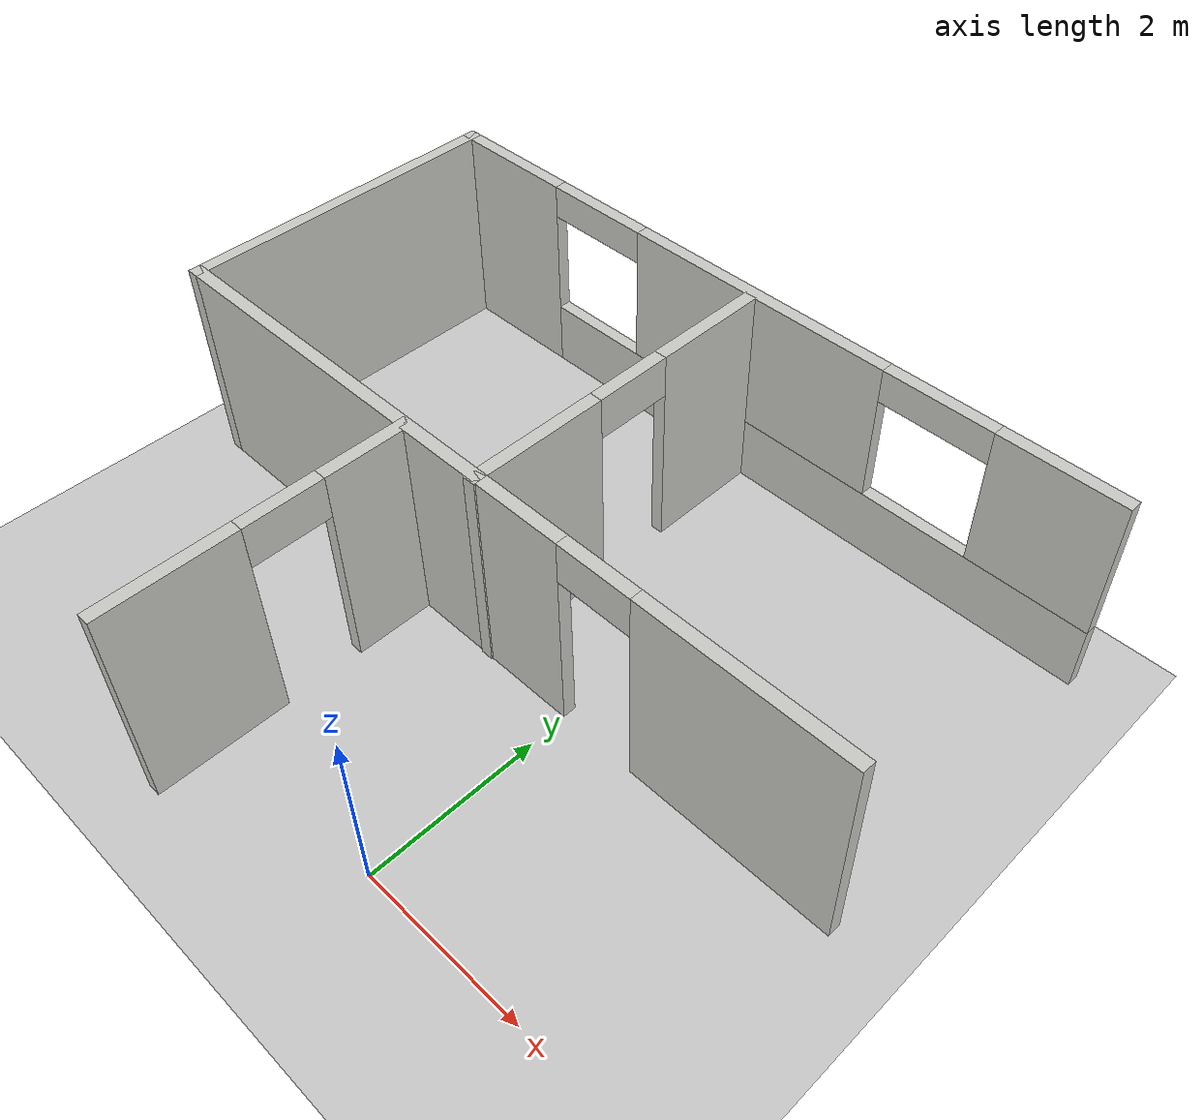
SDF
<sdf version="1.6">
 <world name="default">
  <model name="ground_plane">
   <static>1</static>
   <link name="link">
    <collision name="collision">
     <geometry><plane><normal>0 0 1</normal><size>100 100</size></plane></geometry>
     <surface>
      <contact><collide_bitmask>65535</collide_bitmask></contact>
      <friction><ode><mu>100</mu><mu2>50</mu2></ode></friction>
     </surface>
    </collision>
    <visual name="visual">
     <cast_shadows>0</cast_shadows>
     <geometry><plane><normal>0 0 1</normal><size>100 100</size></plane></geometry>
     <material>
      <script><uri>file://media/materials/scripts/gazebo.material</uri><name>Gazebo/Grey</name></script>
     </material>
    </visual>
   </link>
  </model>
  <model name="house">
   <link name="Wall_13">
    <pose>-2.28096 0.843058 0 0 -0 1.5708</pose>
    <visual name="Wall_13_Visual_2">
     <pose>0.228595 0 2.25 0 -0 0</pose>
     <geometry><box><size>0.9 0.15 0.5</size></box></geometry>
     <material>
      <script><uri>file://media/materials/scripts/gazebo.material</uri><name>Gazebo/CeilingTiled</name></script>
      <ambient>1 1 1 1</ambient>
      <shader type="pixel"/>
     </material>
     <meta><layer>0</layer></meta>
    </visual>
    <visual name="Wall_13_Visual_1">
     <pose>1.2018 0 1.25 0 -0 0</pose>
     <geometry><box><size>1.04641 0.15 2.5</size></box></geometry>
     <material>
      <script><uri>file://media/materials/scripts/gazebo.material</uri><name>Gazebo/CeilingTiled</name></script>
      <ambient>1 1 1 1</ambient>
      <shader type="pixel"/>
     </material>
     <meta><layer>0</layer></meta>
    </visual>
    <visual name="Wall_13_Visual_0">
     <pose>-0.973203 0 1.25 0 -0 0</pose>
     <geometry><box><size>1.5036 0.15 2.5</size></box></geometry>
     <material>
      <script><uri>file://media/materials/scripts/gazebo.material</uri><name>Gazebo/CeilingTiled</name></script>
      <ambient>1 1 1 1</ambient>
      <shader type="pixel"/>
     </material>
     <meta><layer>0</layer></meta>
    </visual>
    <collision name="Wall_13_Collision_1">
     <pose>1.2018 0 1.25 0 -0 0</pose>
     <geometry><box><size>1.04641 0.15 2.5</size></box></geometry>
     <surface>
      <friction>
       <ode><mu>1</mu><mu2>1</mu2><fdir1>0 0 0</fdir1><slip1>0</slip1><slip2>0</slip2></ode>
       <torsional>
        <coefficient>1</coefficient>
        <patch_radius>0</patch_radius>
        <surface_radius>0</surface_radius>
        <use_patch_radius>1</use_patch_radius>
        <ode><slip>0</slip></ode>
       </torsional>
      </friction>
      <bounce><restitution_coefficient>0</restitution_coefficient><threshold>1e+06</threshold></bounce>
      <contact>
       <collide_without_contact>0</collide_without_contact>
       <collide_without_contact_bitmask>1</collide_without_contact_bitmask>
       <collide_bitmask>1</collide_bitmask>
       <ode>
        <soft_cfm>0</soft_cfm>
        <soft_erp>0.2</soft_erp>
        <kp>1e+13</kp>
        <kd>1</kd>
        <max_vel>0.01</max_vel>
        <min_depth>0</min_depth>
       </ode>
       <bullet>
        <split_impulse>1</split_impulse>
        <split_impulse_penetration_threshold>-0.01</split_impulse_penetration_threshold>
        <soft_cfm>0</soft_cfm>
        <soft_erp>0.2</soft_erp>
        <kp>1e+13</kp>
        <kd>1</kd>
       </bullet>
      </contact>
     </surface>
    </collision>
    <collision name="Wall_13_Collision_2">
     <pose>0.228595 0 2.25 0 -0 0</pose>
     <geometry><box><size>0.9 0.15 0.5</size></box></geometry>
     <surface>
      <friction>
       <ode><mu>1</mu><mu2>1</mu2><fdir1>0 0 0</fdir1><slip1>0</slip1><slip2>0</slip2></ode>
       <torsional>
        <coefficient>1</coefficient>
        <patch_radius>0</patch_radius>
        <surface_radius>0</surface_radius>
        <use_patch_radius>1</use_patch_radius>
        <ode><slip>0</slip></ode>
       </torsional>
      </friction>
      <bounce><restitution_coefficient>0</restitution_coefficient><threshold>1e+06</threshold></bounce>
      <contact>
       <collide_without_contact>0</collide_without_contact>
       <collide_without_contact_bitmask>1</collide_without_contact_bitmask>
       <collide_bitmask>1</collide_bitmask>
       <ode>
        <soft_cfm>0</soft_cfm>
        <soft_erp>0.2</soft_erp>
        <kp>1e+13</kp>
        <kd>1</kd>
        <max_vel>0.01</max_vel>
        <min_depth>0</min_depth>
       </ode>
       <bullet>
        <split_impulse>1</split_impulse>
        <split_impulse_penetration_threshold>-0.01</split_impulse_penetration_threshold>
        <soft_cfm>0</soft_cfm>
        <soft_erp>0.2</soft_erp>
        <kp>1e+13</kp>
        <kd>1</kd>
       </bullet>
      </contact>
     </surface>
    </collision>
    <collision name="Wall_13_Collision_0">
     <pose>-0.973203 0 1.25 0 -0 0</pose>
     <geometry><box><size>1.5036 0.15 2.5</size></box></geometry>
     <surface>
      <friction>
       <ode><mu>1</mu><mu2>1</mu2><fdir1>0 0 0</fdir1><slip1>0</slip1><slip2>0</slip2></ode>
       <torsional>
        <coefficient>1</coefficient>
        <patch_radius>0</patch_radius>
        <surface_radius>0</surface_radius>
        <use_patch_radius>1</use_patch_radius>
        <ode><slip>0</slip></ode>
       </torsional>
      </friction>
      <bounce><restitution_coefficient>0</restitution_coefficient><threshold>1e+06</threshold></bounce>
      <contact>
       <collide_without_contact>0</collide_without_contact>
       <collide_without_contact_bitmask>1</collide_without_contact_bitmask>
       <collide_bitmask>1</collide_bitmask>
       <ode>
        <soft_cfm>0</soft_cfm>
        <soft_erp>0.2</soft_erp>
        <kp>1e+13</kp>
        <kd>1</kd>
        <max_vel>0.01</max_vel>
        <min_depth>0</min_depth>
       </ode>
       <bullet>
        <split_impulse>1</split_impulse>
        <split_impulse_penetration_threshold>-0.01</split_impulse_penetration_threshold>
        <soft_cfm>0</soft_cfm>
        <soft_erp>0.2</soft_erp>
        <kp>1e+13</kp>
        <kd>1</kd>
       </bullet>
      </contact>
     </surface>
    </collision>
   </link>
   <link name="Wall_15">
    <pose>-5.72496 4.42806 0 0 -0 1.5708</pose>
    <visual name="Wall_15_Visual">
     <pose>0 0 1.25 0 -0 0</pose>
     <geometry><box><size>4 0.15 2.5</size></box></geometry>
     <material>
      <script><uri>file://media/materials/scripts/gazebo.material</uri><name>Gazebo/CeilingTiled</name></script>
      <ambient>1 1 1 1</ambient>
      <shader type="pixel"/>
     </material>
     <meta><layer>0</layer></meta>
    </visual>
    <collision name="Wall_15_Collision">
     <pose>0 0 1.25 0 -0 0</pose>
     <geometry><box><size>4 0.15 2.5</size></box></geometry>
     <surface>
      <friction>
       <ode><mu>1</mu><mu2>1</mu2><fdir1>0 0 0</fdir1><slip1>0</slip1><slip2>0</slip2></ode>
       <torsional>
        <coefficient>1</coefficient>
        <patch_radius>0</patch_radius>
        <surface_radius>0</surface_radius>
        <use_patch_radius>1</use_patch_radius>
        <ode><slip>0</slip></ode>
       </torsional>
      </friction>
      <bounce><restitution_coefficient>0</restitution_coefficient><threshold>1e+06</threshold></bounce>
      <contact>
       <collide_without_contact>0</collide_without_contact>
       <collide_without_contact_bitmask>1</collide_without_contact_bitmask>
       <collide_bitmask>1</collide_bitmask>
       <ode>
        <soft_cfm>0</soft_cfm>
        <soft_erp>0.2</soft_erp>
        <kp>1e+13</kp>
        <kd>1</kd>
        <max_vel>0.01</max_vel>
        <min_depth>0</min_depth>
       </ode>
       <bullet>
        <split_impulse>1</split_impulse>
        <split_impulse_penetration_threshold>-0.01</split_impulse_penetration_threshold>
        <soft_cfm>0</soft_cfm>
        <soft_erp>0.2</soft_erp>
        <kp>1e+13</kp>
        <kd>1</kd>
       </bullet>
      </contact>
     </surface>
    </collision>
   </link>
   <link name="Wall_16">
    <pose>-1.29996 6.35306 0 0 -0 0</pose>
    <visual name="Wall_16_Visual_5">
     <pose>2.41041 0 2.3 0 -0 0</pose>
     <geometry><box><size>1.3 0.15 0.4</size></box></geometry>
     <material>
      <script><uri>file://media/materials/scripts/gazebo.material</uri><name>Gazebo/CeilingTiled</name></script>
      <ambient>1 1 1 1</ambient>
      <shader type="pixel"/>
     </material>
     <meta><layer>0</layer></meta>
    </visual>
    <visual name="Wall_16_Visual_1">
     <pose>0.804809 0 0.4 0 -0 0</pose>
     <geometry><box><size>7.39038 0.15 0.8</size></box></geometry>
     <material>
      <script><uri>file://media/materials/scripts/gazebo.material</uri><name>Gazebo/CeilingTiled</name></script>
      <ambient>1 1 1 1</ambient>
      <shader type="pixel"/>
     </material>
     <meta><layer>0</layer></meta>
    </visual>
    <visual name="Wall_16_Visual_0">
     <pose>-3.69519 0 1.25 0 -0 0</pose>
     <geometry><box><size>1.60962 0.15 2.5</size></box></geometry>
     <material>
      <script><uri>file://media/materials/scripts/gazebo.material</uri><name>Gazebo/CeilingTiled</name></script>
      <ambient>1 1 1 1</ambient>
      <shader type="pixel"/>
     </material>
     <meta><layer>0</layer></meta>
    </visual>
    <visual name="Wall_16_Visual_2">
     <pose>0.085016 0 1.65 0 -0 0</pose>
     <geometry><box><size>3.3508 0.15 1.7</size></box></geometry>
     <material>
      <script><uri>file://media/materials/scripts/gazebo.material</uri><name>Gazebo/CeilingTiled</name></script>
      <ambient>1 1 1 1</ambient>
      <shader type="pixel"/>
     </material>
     <meta><layer>0</layer></meta>
    </visual>
    <visual name="Wall_16_Visual_4">
     <pose>-2.24038 0 2.3 0 -0 0</pose>
     <geometry><box><size>1.3 0.15 0.4</size></box></geometry>
     <material>
      <script><uri>file://media/materials/scripts/gazebo.material</uri><name>Gazebo/CeilingTiled</name></script>
      <ambient>1 1 1 1</ambient>
      <shader type="pixel"/>
     </material>
     <meta><layer>0</layer></meta>
    </visual>
    <visual name="Wall_16_Visual_3">
     <pose>3.78021 0 1.65 0 -0 0</pose>
     <geometry><box><size>1.43959 0.15 1.7</size></box></geometry>
     <material>
      <script><uri>file://media/materials/scripts/gazebo.material</uri><name>Gazebo/CeilingTiled</name></script>
      <ambient>1 1 1 1</ambient>
      <shader type="pixel"/>
     </material>
     <meta><layer>0</layer></meta>
    </visual>
    <collision name="Wall_16_Collision_2">
     <pose>0.085016 0 1.65 0 -0 0</pose>
     <geometry><box><size>3.3508 0.15 1.7</size></box></geometry>
     <surface>
      <friction>
       <ode><mu>1</mu><mu2>1</mu2><fdir1>0 0 0</fdir1><slip1>0</slip1><slip2>0</slip2></ode>
       <torsional>
        <coefficient>1</coefficient>
        <patch_radius>0</patch_radius>
        <surface_radius>0</surface_radius>
        <use_patch_radius>1</use_patch_radius>
        <ode><slip>0</slip></ode>
       </torsional>
      </friction>
      <bounce><restitution_coefficient>0</restitution_coefficient><threshold>1e+06</threshold></bounce>
      <contact>
       <collide_without_contact>0</collide_without_contact>
       <collide_without_contact_bitmask>1</collide_without_contact_bitmask>
       <collide_bitmask>1</collide_bitmask>
       <ode>
        <soft_cfm>0</soft_cfm>
        <soft_erp>0.2</soft_erp>
        <kp>1e+13</kp>
        <kd>1</kd>
        <max_vel>0.01</max_vel>
        <min_depth>0</min_depth>
       </ode>
       <bullet>
        <split_impulse>1</split_impulse>
        <split_impulse_penetration_threshold>-0.01</split_impulse_penetration_threshold>
        <soft_cfm>0</soft_cfm>
        <soft_erp>0.2</soft_erp>
        <kp>1e+13</kp>
        <kd>1</kd>
       </bullet>
      </contact>
     </surface>
    </collision>
    <collision name="Wall_16_Collision_0">
     <pose>-3.69519 0 1.25 0 -0 0</pose>
     <geometry><box><size>1.60962 0.15 2.5</size></box></geometry>
     <surface>
      <friction>
       <ode><mu>1</mu><mu2>1</mu2><fdir1>0 0 0</fdir1><slip1>0</slip1><slip2>0</slip2></ode>
       <torsional>
        <coefficient>1</coefficient>
        <patch_radius>0</patch_radius>
        <surface_radius>0</surface_radius>
        <use_patch_radius>1</use_patch_radius>
        <ode><slip>0</slip></ode>
       </torsional>
      </friction>
      <bounce><restitution_coefficient>0</restitution_coefficient><threshold>1e+06</threshold></bounce>
      <contact>
       <collide_without_contact>0</collide_without_contact>
       <collide_without_contact_bitmask>1</collide_without_contact_bitmask>
       <collide_bitmask>1</collide_bitmask>
       <ode>
        <soft_cfm>0</soft_cfm>
        <soft_erp>0.2</soft_erp>
        <kp>1e+13</kp>
        <kd>1</kd>
        <max_vel>0.01</max_vel>
        <min_depth>0</min_depth>
       </ode>
       <bullet>
        <split_impulse>1</split_impulse>
        <split_impulse_penetration_threshold>-0.01</split_impulse_penetration_threshold>
        <soft_cfm>0</soft_cfm>
        <soft_erp>0.2</soft_erp>
        <kp>1e+13</kp>
        <kd>1</kd>
       </bullet>
      </contact>
     </surface>
    </collision>
    <collision name="Wall_16_Collision_3">
     <pose>3.78021 0 1.65 0 -0 0</pose>
     <geometry><box><size>1.43959 0.15 1.7</size></box></geometry>
     <surface>
      <friction>
       <ode><mu>1</mu><mu2>1</mu2><fdir1>0 0 0</fdir1><slip1>0</slip1><slip2>0</slip2></ode>
       <torsional>
        <coefficient>1</coefficient>
        <patch_radius>0</patch_radius>
        <surface_radius>0</surface_radius>
        <use_patch_radius>1</use_patch_radius>
        <ode><slip>0</slip></ode>
       </torsional>
      </friction>
      <bounce><restitution_coefficient>0</restitution_coefficient><threshold>1e+06</threshold></bounce>
      <contact>
       <collide_without_contact>0</collide_without_contact>
       <collide_without_contact_bitmask>1</collide_without_contact_bitmask>
       <collide_bitmask>1</collide_bitmask>
       <ode>
        <soft_cfm>0</soft_cfm>
        <soft_erp>0.2</soft_erp>
        <kp>1e+13</kp>
        <kd>1</kd>
        <max_vel>0.01</max_vel>
        <min_depth>0</min_depth>
       </ode>
       <bullet>
        <split_impulse>1</split_impulse>
        <split_impulse_penetration_threshold>-0.01</split_impulse_penetration_threshold>
        <soft_cfm>0</soft_cfm>
        <soft_erp>0.2</soft_erp>
        <kp>1e+13</kp>
        <kd>1</kd>
       </bullet>
      </contact>
     </surface>
    </collision>
    <collision name="Wall_16_Collision_4">
     <pose>-2.24038 0 2.3 0 -0 0</pose>
     <geometry><box><size>1.3 0.15 0.4</size></box></geometry>
     <surface>
      <friction>
       <ode><mu>1</mu><mu2>1</mu2><fdir1>0 0 0</fdir1><slip1>0</slip1><slip2>0</slip2></ode>
       <torsional>
        <coefficient>1</coefficient>
        <patch_radius>0</patch_radius>
        <surface_radius>0</surface_radius>
        <use_patch_radius>1</use_patch_radius>
        <ode><slip>0</slip></ode>
       </torsional>
      </friction>
      <bounce><restitution_coefficient>0</restitution_coefficient><threshold>1e+06</threshold></bounce>
      <contact>
       <collide_without_contact>0</collide_without_contact>
       <collide_without_contact_bitmask>1</collide_without_contact_bitmask>
       <collide_bitmask>1</collide_bitmask>
       <ode>
        <soft_cfm>0</soft_cfm>
        <soft_erp>0.2</soft_erp>
        <kp>1e+13</kp>
        <kd>1</kd>
        <max_vel>0.01</max_vel>
        <min_depth>0</min_depth>
       </ode>
       <bullet>
        <split_impulse>1</split_impulse>
        <split_impulse_penetration_threshold>-0.01</split_impulse_penetration_threshold>
        <soft_cfm>0</soft_cfm>
        <soft_erp>0.2</soft_erp>
        <kp>1e+13</kp>
        <kd>1</kd>
       </bullet>
      </contact>
     </surface>
    </collision>
    <collision name="Wall_16_Collision_5">
     <pose>2.41041 0 2.3 0 -0 0</pose>
     <geometry><box><size>1.3 0.15 0.4</size></box></geometry>
     <surface>
      <friction>
       <ode><mu>1</mu><mu2>1</mu2><fdir1>0 0 0</fdir1><slip1>0</slip1><slip2>0</slip2></ode>
       <torsional>
        <coefficient>1</coefficient>
        <patch_radius>0</patch_radius>
        <surface_radius>0</surface_radius>
        <use_patch_radius>1</use_patch_radius>
        <ode><slip>0</slip></ode>
       </torsional>
      </friction>
      <bounce><restitution_coefficient>0</restitution_coefficient><threshold>1e+06</threshold></bounce>
      <contact>
       <collide_without_contact>0</collide_without_contact>
       <collide_without_contact_bitmask>1</collide_without_contact_bitmask>
       <collide_bitmask>1</collide_bitmask>
       <ode>
        <soft_cfm>0</soft_cfm>
        <soft_erp>0.2</soft_erp>
        <kp>1e+13</kp>
        <kd>1</kd>
        <max_vel>0.01</max_vel>
        <min_depth>0</min_depth>
       </ode>
       <bullet>
        <split_impulse>1</split_impulse>
        <split_impulse_penetration_threshold>-0.01</split_impulse_penetration_threshold>
        <soft_cfm>0</soft_cfm>
        <soft_erp>0.2</soft_erp>
        <kp>1e+13</kp>
        <kd>1</kd>
       </bullet>
      </contact>
     </surface>
    </collision>
    <collision name="Wall_16_Collision_1">
     <pose>0.804809 0 0.4 0 -0 0</pose>
     <geometry><box><size>7.39038 0.15 0.8</size></box></geometry>
     <surface>
      <friction>
       <ode><mu>1</mu><mu2>1</mu2><fdir1>0 0 0</fdir1><slip1>0</slip1><slip2>0</slip2></ode>
       <torsional>
        <coefficient>1</coefficient>
        <patch_radius>0</patch_radius>
        <surface_radius>0</surface_radius>
        <use_patch_radius>1</use_patch_radius>
        <ode><slip>0</slip></ode>
       </torsional>
      </friction>
      <bounce><restitution_coefficient>0</restitution_coefficient><threshold>1e+06</threshold></bounce>
      <contact>
       <collide_without_contact>0</collide_without_contact>
       <collide_without_contact_bitmask>1</collide_without_contact_bitmask>
       <collide_bitmask>1</collide_bitmask>
       <ode>
        <soft_cfm>0</soft_cfm>
        <soft_erp>0.2</soft_erp>
        <kp>1e+13</kp>
        <kd>1</kd>
        <max_vel>0.01</max_vel>
        <min_depth>0</min_depth>
       </ode>
       <bullet>
        <split_impulse>1</split_impulse>
        <split_impulse_penetration_threshold>-0.01</split_impulse_penetration_threshold>
        <soft_cfm>0</soft_cfm>
        <soft_erp>0.2</soft_erp>
        <kp>1e+13</kp>
        <kd>1</kd>
       </bullet>
      </contact>
     </surface>
    </collision>
   </link>
   <link name="Wall_21">
    <pose>-1.26296 4.41081 0 0 -0 1.5708</pose>
    <visual name="Wall_21_Visual_1">
     <pose>1.26019 0 1.25 0 -0 0</pose>
     <geometry><box><size>1.47962 0.15 2.5</size></box></geometry>
     <material>
      <script><uri>file://media/materials/scripts/gazebo.material</uri><name>Gazebo/CeilingTiled</name></script>
      <ambient>1 1 1 1</ambient>
      <shader type="pixel"/>
     </material>
     <meta><layer>0</layer></meta>
    </visual>
    <visual name="Wall_21_Visual_0">
     <pose>-1.18981 0 1.25 0 -0 0</pose>
     <geometry><box><size>1.62038 0.15 2.5</size></box></geometry>
     <material>
      <script><uri>file://media/materials/scripts/gazebo.material</uri><name>Gazebo/CeilingTiled</name></script>
      <ambient>1 1 1 1</ambient>
      <shader type="pixel"/>
     </material>
     <meta><layer>0</layer></meta>
    </visual>
    <visual name="Wall_21_Visual_2">
     <pose>0.070376 0 2.25 0 -0 0</pose>
     <geometry><box><size>0.9 0.15 0.5</size></box></geometry>
     <material>
      <script><uri>file://media/materials/scripts/gazebo.material</uri><name>Gazebo/CeilingTiled</name></script>
      <ambient>1 1 1 1</ambient>
      <shader type="pixel"/>
     </material>
     <meta><layer>0</layer></meta>
    </visual>
    <collision name="Wall_21_Collision_1">
     <pose>1.26019 0 1.25 0 -0 0</pose>
     <geometry><box><size>1.47962 0.15 2.5</size></box></geometry>
     <surface>
      <friction>
       <ode><mu>1</mu><mu2>1</mu2><fdir1>0 0 0</fdir1><slip1>0</slip1><slip2>0</slip2></ode>
       <torsional>
        <coefficient>1</coefficient>
        <patch_radius>0</patch_radius>
        <surface_radius>0</surface_radius>
        <use_patch_radius>1</use_patch_radius>
        <ode><slip>0</slip></ode>
       </torsional>
      </friction>
      <bounce><restitution_coefficient>0</restitution_coefficient><threshold>1e+06</threshold></bounce>
      <contact>
       <collide_without_contact>0</collide_without_contact>
       <collide_without_contact_bitmask>1</collide_without_contact_bitmask>
       <collide_bitmask>1</collide_bitmask>
       <ode>
        <soft_cfm>0</soft_cfm>
        <soft_erp>0.2</soft_erp>
        <kp>1e+13</kp>
        <kd>1</kd>
        <max_vel>0.01</max_vel>
        <min_depth>0</min_depth>
       </ode>
       <bullet>
        <split_impulse>1</split_impulse>
        <split_impulse_penetration_threshold>-0.01</split_impulse_penetration_threshold>
        <soft_cfm>0</soft_cfm>
        <soft_erp>0.2</soft_erp>
        <kp>1e+13</kp>
        <kd>1</kd>
       </bullet>
      </contact>
     </surface>
    </collision>
    <collision name="Wall_21_Collision_0">
     <pose>-1.18981 0 1.25 0 -0 0</pose>
     <geometry><box><size>1.62038 0.15 2.5</size></box></geometry>
     <surface>
      <friction>
       <ode><mu>1</mu><mu2>1</mu2><fdir1>0 0 0</fdir1><slip1>0</slip1><slip2>0</slip2></ode>
       <torsional>
        <coefficient>1</coefficient>
        <patch_radius>0</patch_radius>
        <surface_radius>0</surface_radius>
        <use_patch_radius>1</use_patch_radius>
        <ode><slip>0</slip></ode>
       </torsional>
      </friction>
      <bounce><restitution_coefficient>0</restitution_coefficient><threshold>1e+06</threshold></bounce>
      <contact>
       <collide_without_contact>0</collide_without_contact>
       <collide_without_contact_bitmask>1</collide_without_contact_bitmask>
       <collide_bitmask>1</collide_bitmask>
       <ode>
        <soft_cfm>0</soft_cfm>
        <soft_erp>0.2</soft_erp>
        <kp>1e+13</kp>
        <kd>1</kd>
        <max_vel>0.01</max_vel>
        <min_depth>0</min_depth>
       </ode>
       <bullet>
        <split_impulse>1</split_impulse>
        <split_impulse_penetration_threshold>-0.01</split_impulse_penetration_threshold>
        <soft_cfm>0</soft_cfm>
        <soft_erp>0.2</soft_erp>
        <kp>1e+13</kp>
        <kd>1</kd>
       </bullet>
      </contact>
     </surface>
    </collision>
    <collision name="Wall_21_Collision_2">
     <pose>0.070376 0 2.25 0 -0 0</pose>
     <geometry><box><size>0.9 0.15 0.5</size></box></geometry>
     <surface>
      <friction>
       <ode><mu>1</mu><mu2>1</mu2><fdir1>0 0 0</fdir1><slip1>0</slip1><slip2>0</slip2></ode>
       <torsional>
        <coefficient>1</coefficient>
        <patch_radius>0</patch_radius>
        <surface_radius>0</surface_radius>
        <use_patch_radius>1</use_patch_radius>
        <ode><slip>0</slip></ode>
       </torsional>
      </friction>
      <bounce><restitution_coefficient>0</restitution_coefficient><threshold>1e+06</threshold></bounce>
      <contact>
       <collide_without_contact>0</collide_without_contact>
       <collide_without_contact_bitmask>1</collide_without_contact_bitmask>
       <collide_bitmask>1</collide_bitmask>
       <ode>
        <soft_cfm>0</soft_cfm>
        <soft_erp>0.2</soft_erp>
        <kp>1e+13</kp>
        <kd>1</kd>
        <max_vel>0.01</max_vel>
        <min_depth>0</min_depth>
       </ode>
       <bullet>
        <split_impulse>1</split_impulse>
        <split_impulse_penetration_threshold>-0.01</split_impulse_penetration_threshold>
        <soft_cfm>0</soft_cfm>
        <soft_erp>0.2</soft_erp>
        <kp>1e+13</kp>
        <kd>1</kd>
       </bullet>
      </contact>
     </surface>
    </collision>
   </link>
   <link name="Wall_5">
    <pose>-1.29996 2.50306 0 0 -0 0</pose>
    <visual name="Wall_5_Visual_1">
     <pose>3.28235 0 1.25 0 -0 0</pose>
     <geometry><box><size>2.4353 0.15 2.5</size></box></geometry>
     <material>
      <script><uri>file://media/materials/scripts/gazebo.material</uri><name>Gazebo/CeilingTiled</name></script>
      <ambient>1 1 1 1</ambient>
      <shader type="pixel"/>
     </material>
     <meta><layer>0</layer></meta>
    </visual>
    <visual name="Wall_5_Visual_0">
     <pose>-1.66765 0 1.25 0 -0 0</pose>
     <geometry><box><size>5.6647 0.15 2.5</size></box></geometry>
     <material>
      <script><uri>file://media/materials/scripts/gazebo.material</uri><name>Gazebo/CeilingTiled</name></script>
      <ambient>1 1 1 1</ambient>
      <shader type="pixel"/>
     </material>
     <meta><layer>0</layer></meta>
    </visual>
    <visual name="Wall_5_Visual_2">
     <pose>1.6147 0 2.25 0 -0 0</pose>
     <geometry><box><size>0.9 0.15 0.5</size></box></geometry>
     <material>
      <script><uri>file://media/materials/scripts/gazebo.material</uri><name>Gazebo/CeilingTiled</name></script>
      <ambient>1 1 1 1</ambient>
      <shader type="pixel"/>
     </material>
     <meta><layer>0</layer></meta>
    </visual>
    <collision name="Wall_5_Collision_2">
     <pose>1.6147 0 2.25 0 -0 0</pose>
     <geometry><box><size>0.9 0.15 0.5</size></box></geometry>
     <surface>
      <friction>
       <ode><mu>1</mu><mu2>1</mu2><fdir1>0 0 0</fdir1><slip1>0</slip1><slip2>0</slip2></ode>
       <torsional>
        <coefficient>1</coefficient>
        <patch_radius>0</patch_radius>
        <surface_radius>0</surface_radius>
        <use_patch_radius>1</use_patch_radius>
        <ode><slip>0</slip></ode>
       </torsional>
      </friction>
      <bounce><restitution_coefficient>0</restitution_coefficient><threshold>1e+06</threshold></bounce>
      <contact>
       <collide_without_contact>0</collide_without_contact>
       <collide_without_contact_bitmask>1</collide_without_contact_bitmask>
       <collide_bitmask>1</collide_bitmask>
       <ode>
        <soft_cfm>0</soft_cfm>
        <soft_erp>0.2</soft_erp>
        <kp>1e+13</kp>
        <kd>1</kd>
        <max_vel>0.01</max_vel>
        <min_depth>0</min_depth>
       </ode>
       <bullet>
        <split_impulse>1</split_impulse>
        <split_impulse_penetration_threshold>-0.01</split_impulse_penetration_threshold>
        <soft_cfm>0</soft_cfm>
        <soft_erp>0.2</soft_erp>
        <kp>1e+13</kp>
        <kd>1</kd>
       </bullet>
      </contact>
     </surface>
    </collision>
    <collision name="Wall_5_Collision_0">
     <pose>-1.66765 0 1.25 0 -0 0</pose>
     <geometry><box><size>5.6647 0.15 2.5</size></box></geometry>
     <surface>
      <friction>
       <ode><mu>1</mu><mu2>1</mu2><fdir1>0 0 0</fdir1><slip1>0</slip1><slip2>0</slip2></ode>
       <torsional>
        <coefficient>1</coefficient>
        <patch_radius>0</patch_radius>
        <surface_radius>0</surface_radius>
        <use_patch_radius>1</use_patch_radius>
        <ode><slip>0</slip></ode>
       </torsional>
      </friction>
      <bounce><restitution_coefficient>0</restitution_coefficient><threshold>1e+06</threshold></bounce>
      <contact>
       <collide_without_contact>0</collide_without_contact>
       <collide_without_contact_bitmask>1</collide_without_contact_bitmask>
       <collide_bitmask>1</collide_bitmask>
       <ode>
        <soft_cfm>0</soft_cfm>
        <soft_erp>0.2</soft_erp>
        <kp>1e+13</kp>
        <kd>1</kd>
        <max_vel>0.01</max_vel>
        <min_depth>0</min_depth>
       </ode>
       <bullet>
        <split_impulse>1</split_impulse>
        <split_impulse_penetration_threshold>-0.01</split_impulse_penetration_threshold>
        <soft_cfm>0</soft_cfm>
        <soft_erp>0.2</soft_erp>
        <kp>1e+13</kp>
        <kd>1</kd>
       </bullet>
      </contact>
     </surface>
    </collision>
    <collision name="Wall_5_Collision_1">
     <pose>3.28235 0 1.25 0 -0 0</pose>
     <geometry><box><size>2.4353 0.15 2.5</size></box></geometry>
     <surface>
      <friction>
       <ode><mu>1</mu><mu2>1</mu2><fdir1>0 0 0</fdir1><slip1>0</slip1><slip2>0</slip2></ode>
       <torsional>
        <coefficient>1</coefficient>
        <patch_radius>0</patch_radius>
        <surface_radius>0</surface_radius>
        <use_patch_radius>1</use_patch_radius>
        <ode><slip>0</slip></ode>
       </torsional>
      </friction>
      <bounce><restitution_coefficient>0</restitution_coefficient><threshold>1e+06</threshold></bounce>
      <contact>
       <collide_without_contact>0</collide_without_contact>
       <collide_without_contact_bitmask>1</collide_without_contact_bitmask>
       <collide_bitmask>1</collide_bitmask>
       <ode>
        <soft_cfm>0</soft_cfm>
        <soft_erp>0.2</soft_erp>
        <kp>1e+13</kp>
        <kd>1</kd>
        <max_vel>0.01</max_vel>
        <min_depth>0</min_depth>
       </ode>
       <bullet>
        <split_impulse>1</split_impulse>
        <split_impulse_penetration_threshold>-0.01</split_impulse_penetration_threshold>
        <soft_cfm>0</soft_cfm>
        <soft_erp>0.2</soft_erp>
        <kp>1e+13</kp>
        <kd>1</kd>
       </bullet>
      </contact>
     </surface>
    </collision>
   </link>
   <static>1</static>
   <pose>0.117199 0.016408 0 0 -0 0</pose>
  </model>
 </world>
</sdf>
